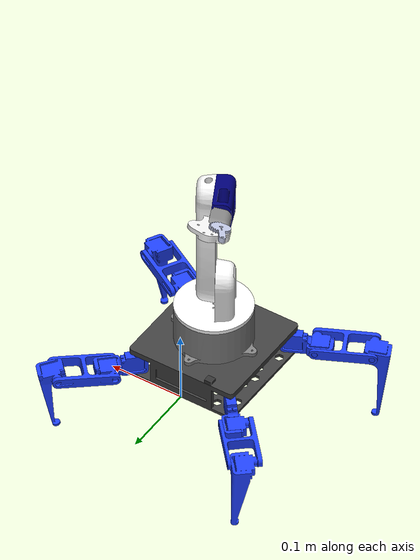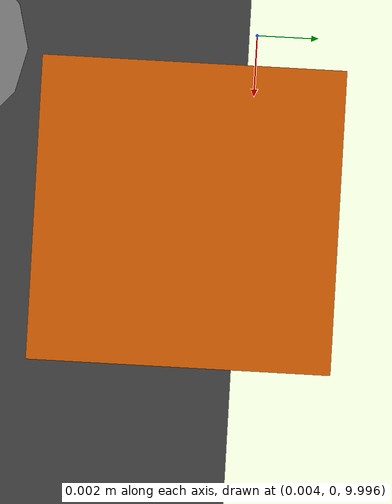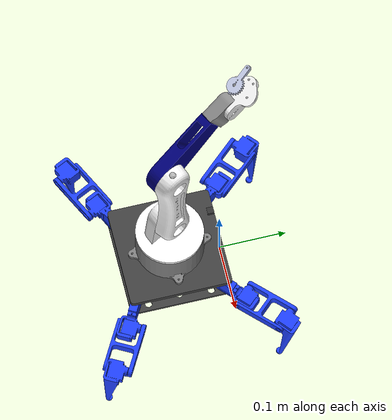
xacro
<?xml version="1.0" encoding="utf-8"?>

<robot xmlns:xacro="http://www.ros.org/wiki/xacro" name="rob_description">

  <xacro:include filename="$(find rob_description)/urdf/rob_plugins.gazebo"/>

  <link name="base_link">
    <visual>
      <origin xyz="0 0 0" rpy="0 0 0" />
      <geometry>
        <mesh filename="package://rob_description/meshes/base_link.STL" />
      </geometry>
      <material name="">
        <color rgba="0.250980392156863 0.250980392156863 0.250980392156863 1" />
      </material>
    </visual>
    <collision>
      <origin xyz="0 0 0" rpy="0 0 0" />
      <geometry>
        <mesh filename="package://rob_description/meshes/base_link.STL" />
      </geometry>
    </collision>
  </link>

  <link name="leg_1_1_link">
    <inertial>
      <origin xyz="-0.0106490352621465 -0.00788349186649798 -0.0217316457944361" rpy="0 0 0" />
      <mass value="0.0143673057318463" />
      <inertia ixx="2.00046296981926E-06" ixy="-1.44785102804453E-06" ixz="1.0199547543337E-07" iyy="2.90267728958665E-06" iyz="5.70211060457614E-08" izz="3.69909430740157E-06" />
    </inertial>
    <visual>
      <origin xyz="0 0 0" rpy="0 0 0" />
      <geometry>
        <mesh filename="package://rob_description/meshes/leg_1_1_link.STL" />
      </geometry>
      <material name="">
        <color rgba="0.12156862745098 0.254901960784314 1 1" />
      </material>
    </visual>
    <collision>
      <origin xyz="0 0 0" rpy="0 0 0" />
      <geometry>
        <mesh filename="package://rob_description/meshes/leg_1_1_link.STL" />
      </geometry>
    </collision>
  </link>
  <joint name="leg_1_1_joint" type="revolute">
    <origin xyz="0.067436 -0.007588 0.03925" rpy="0 0 3.1416" />
    <parent link="base_link" />
    <child link="leg_1_1_link" />
    <axis xyz="0 0 1" />
    <limit lower="-1.3" upper="1.3" effort="1" velocity="0.524" />
  </joint>
  <link name="leg_1_2_link">
    <inertial>
      <origin xyz="-0.0240030080062505 0.00154691156426078 -0.0168300270535889" rpy="0 0 0" />
      <mass value="0.0194186744544705" />
      <inertia ixx="4.37362559849436E-06" ixy="3.15015061261735E-07" ixz="-3.65341749437026E-08" iyy="9.16498617164118E-06" iyz="2.3249787544917E-22" izz="5.43377889107762E-06" />
    </inertial>
    <visual>
      <origin xyz="0 0 0" rpy="0 0 0" />
      <geometry>
        <mesh filename="package://rob_description/meshes/leg_1_2_link.STL" />
      </geometry>
      <material name="">
        <color rgba="0.12156862745098 0.254901960784314 1 1" />
      </material>
    </visual>
    <collision>
      <origin xyz="0 0 0" rpy="0 0 0" />
      <geometry>
        <mesh filename="package://rob_description/meshes/leg_1_2_link.STL" />
      </geometry>
    </collision>
  </link>
  <joint name="leg_1_2_joint" type="revolute">
    <origin xyz="-0.0094487 -0.037471 -0.02475" rpy="1.5708 0 0.75" />
    <parent link="leg_1_1_link" />
    <child link="leg_1_2_link" />
    <axis xyz="0 0 1" />
    <limit lower="-1.57" upper="1.57" effort="1" velocity="0.524" />
  </joint>
  <link name="leg_1_3_link">
    <inertial>
      <origin xyz="-0.0116199972401624 -0.0159593362453021 -0.023840410791102" rpy="0 0 0" />
      <mass value="0.0241947516819825" />
      <inertia ixx="1.00525150794293E-05" ixy="-2.63446904038669E-06" ixz="-1.44799444513624E-07" iyy="3.22719003519367E-06" iyz="-4.80347692515564E-07" izz="1.14324733611022E-05" />
    </inertial>
    <visual>
      <origin xyz="0 0 0" rpy="0 0 0" />
      <geometry>
        <mesh filename="package://rob_description/meshes/leg_1_3_link.STL" />
      </geometry>
      <material name="">
        <color rgba="0.12156862745098 0.254901960784314 1 1" />
      </material>
    </visual>
    <collision>
      <origin xyz="0 0 0" rpy="0 0 0" />
      <geometry>
        <mesh filename="package://rob_description/meshes/leg_1_3_link.STL" />
      </geometry>
    </collision>
  </link>
  <joint name="leg_1_3_joint" type="revolute">
    <origin xyz="-0.070632 0.0048883 0" rpy="0 0 0.3" />
    <parent link="leg_1_2_link" />
    <child link="leg_1_3_link" />
    <axis xyz="0 0 1" />
    <limit lower="-3.09" upper="0.5" effort="1" velocity="0.524" />
  </joint>
  <link name="leg_2_1_link">
    <inertial>
      <origin xyz="0.00765382023590318 -0.0110595344702691 -0.0217316457944361" rpy="0 0 0" />
      <mass value="0.0143673057318463" />
      <inertia ixx="2.99910580377544E-06" ixy="1.4142047075038E-06" ixz="-5.35542822138962E-08" iyy="1.90403445563047E-06" iyz="1.03857702651828E-07" izz="3.69909430740157E-06" />
    </inertial>
    <visual>
      <origin xyz="0 0 0" rpy="0 0 0" />
      <geometry>
        <mesh filename="package://rob_description/meshes/leg_2_1_link.STL" />
      </geometry>
      <material name="">
        <color rgba="0.12156862745098 0.254901960784314 1 1" />
      </material>
    </visual>
    <collision>
      <origin xyz="0 0 0" rpy="0 0 0" />
      <geometry>
        <mesh filename="package://rob_description/meshes/leg_2_1_link.STL" />
      </geometry>
    </collision>
  </link>
  <joint name="leg_2_1_joint" type="revolute">
    <origin xyz="-0.067132 -0.0078501 0.03925" rpy="0 0 3.1416" />
    <parent link="base_link" />
    <child link="leg_2_1_link" />
    <axis xyz="0 0 1" />
    <limit lower="-1.3" upper="1.3" effort="1" velocity="0.524" />
  </joint>
  <link name="leg_2_2_link">
    <inertial>
      <origin xyz="-0.0240407161564033 0.000837306848763444 -0.0168300270535892" rpy="0 0 0" />
      <mass value="0.0194186744544706" />
      <inertia ixx="4.35825480780332E-06" ixy="1.70797093131495E-07" ixz="-3.65341749437066E-08" iyy="9.18035696233226E-06" iyz="7.6771153781775E-22" izz="5.43377889107763E-06" />
    </inertial>
    <visual>
      <origin xyz="0 0 0" rpy="0 0 0" />
      <geometry>
        <mesh filename="package://rob_description/meshes/leg_2_2_link.STL" />
      </geometry>
      <material name="">
        <color rgba="0.12156862745098 0.254901960784314 1 1" />
      </material>
    </visual>
    <collision>
      <origin xyz="0 0 0" rpy="0 0 0" />
      <geometry>
        <mesh filename="package://rob_description/meshes/leg_2_2_link.STL" />
      </geometry>
    </collision>
  </link>
  <joint name="leg_2_2_joint" type="revolute">
    <origin xyz="0.037396 -0.011005 -0.02475" rpy="1.5708 0 2.2941" />
    <parent link="leg_2_1_link" />
    <child link="leg_2_2_link" />
    <axis xyz="0 0 1" />
    <limit lower="-3.14" upper="0" effort="1" velocity="0.524" />
  </joint>
  <link name="leg_2_3_link">
    <inertial>
      <origin xyz="-0.0120694937507684 -0.015533695318398 -0.0238404132064595" rpy="0 0 0" />
      <mass value="0.0241947564491642" />
      <inertia ixx="9.84592383759881E-06" ixy="-2.88232802391957E-06" ixz="-1.62673942353806E-07" iyy="3.43378314409524E-06" iyz="-4.74594077197786E-07" izz="1.14324745456412E-05" />
    </inertial>
    <visual>
      <origin xyz="0 0 0" rpy="0 0 0" />
      <geometry>
        <mesh filename="package://rob_description/meshes/leg_2_3_link.STL" />
      </geometry>
      <material name="">
        <color rgba="0.12156862745098 0.254901960784314 1 1" />
      </material>
    </visual>
    <collision>
      <origin xyz="0 0 0" rpy="0 0 0" />
      <geometry>
        <mesh filename="package://rob_description/meshes/leg_2_3_link.STL" />
      </geometry>
    </collision>
  </link>
  <joint name="leg_2_3_joint" type="revolute">
    <origin xyz="-0.070949 0.0026748 0" rpy="0 0 0.3" />
    <parent link="leg_2_2_link" />
    <child link="leg_2_3_link" />
    <axis xyz="0 0 1" />
    <limit lower="-1.57" upper="1.57" effort="1" velocity="0.524" />
  </joint>
  <link name="leg_3_1_link">
    <inertial>
      <origin xyz="0.0126970354971494 0.00443616461447369 -0.0217316457944361" rpy="0 0 0" />
      <mass value="0.0143673057318463" />
      <inertia ixx="1.25625446259264E-06" ixy="-9.3326883858219E-07" ixz="-1.14361605927127E-07" iyy="3.64688579681327E-06" iyz="-2.39980547822068E-08" izz="3.69909430740157E-06" />
    </inertial>
    <visual>
      <origin xyz="0 0 0" rpy="0 0 0" />
      <geometry>
        <mesh filename="package://rob_description/meshes/leg_3_1_link.STL" />
      </geometry>
      <material name="">
        <color rgba="0.12156862745098 0.254901960784314 1 1" />
      </material>
    </visual>
    <collision>
      <origin xyz="0 0 0" rpy="0 0 0" />
      <geometry>
        <mesh filename="package://rob_description/meshes/leg_3_1_link.STL" />
      </geometry>
    </collision>
  </link>
  <joint name="leg_3_1_joint" type="revolute">
    <origin xyz="-0.06718 -0.14209 0.03925" rpy="0 0 3.1416" />
    <parent link="base_link" />
    <child link="leg_3_1_link" />
    <axis xyz="0 0 1" />
    <limit lower="-1.3" upper="1.3" effort="1" velocity="0.524" />
  </joint>
  <link name="leg_3_2_link">
    <inertial>
      <origin xyz="-0.02405625766153 -5.43509583599191E-05 -0.0168300270513747" rpy="0 0 0" />
      <mass value="0.0194186744544706" />
      <inertia ixx="4.35191218053022E-06" ixy="-1.10943931526685E-08" ixz="-3.65341749017511E-08" iyy="9.18669958960249E-06" iyz="4.29736871833547E-19" izz="5.43377889108045E-06" />
    </inertial>
    <visual>
      <origin xyz="0 0 0" rpy="0 0 0" />
      <geometry>
        <mesh filename="package://rob_description/meshes/leg_3_2_link.STL" />
      </geometry>
      <material name="">
        <color rgba="0.12156862745098 0.254901960784314 1 1" />
      </material>
    </visual>
    <collision>
      <origin xyz="0 0 0" rpy="0 0 0" />
      <geometry>
        <mesh filename="package://rob_description/meshes/leg_3_2_link.STL" />
      </geometry>
    </collision>
  </link>
  <joint name="leg_3_2_joint" type="revolute">
    <origin xyz="0.020556 0.033121 -0.02475" rpy="1.5708 0 -2.6876" />
    <parent link="leg_3_1_link" />
    <child link="leg_3_2_link" />
    <axis xyz="0 0 1" />
    <limit lower="-1.57" upper="1.57" effort="1" velocity="0.524" />
  </joint>
  <link name="leg_3_3_link">
    <inertial>
      <origin xyz="-0.0124936356093147 -0.0151946394857798 -0.0238404136825089" rpy="0 0 0" />
      <mass value="0.0241947491201489" />
      <inertia ixx="9.68198159825631E-06" ixy="-3.05484752975316E-06" ixz="-1.7571148648404E-07" iyy="3.59771587259095E-06" iyz="-4.69924040082928E-07" izz="1.14324644656944E-05" />
    </inertial>
    <visual>
      <origin xyz="0 0 0" rpy="0 0 0" />
      <geometry>
        <mesh filename="package://rob_description/meshes/leg_3_3_link.STL" />
      </geometry>
      <material name="">
        <color rgba="0.12156862745098 0.254901960784314 1 1" />
      </material>
    </visual>
    <collision>
      <origin xyz="0 0 0" rpy="0 0 0" />
      <geometry>
        <mesh filename="package://rob_description/meshes/leg_3_3_link.STL" />
      </geometry>
    </collision>
  </link>
  <joint name="leg_3_3_joint" type="revolute">
    <origin xyz="-0.070997 -0.00013741 0" rpy="0 0 0.3" />
    <parent link="leg_3_2_link" />
    <child link="leg_3_3_link" />
    <axis xyz="0 0 1" />
    <limit lower="-3.09" upper="0.5" effort="1" velocity="0.524" />
  </joint>
  <link name="leg_4_1_link">
    <inertial>
      <origin xyz="-0.0108987888292679 0.00788103222665758 -0.0217316457944361" rpy="0 0 0" />
      <mass value="0.0143673057318463" />
      <inertia ixx="1.98994613803271E-06" ixy="1.44453229781212E-06" ixz="8.50719290596024E-08" iyy="2.9131941213732E-06" iyz="-8.01077426322773E-08" izz="3.69909430740156E-06" />
    </inertial>
    <visual>
      <origin xyz="0 0 0" rpy="0 0 0" />
      <geometry>
        <mesh filename="package://rob_description/meshes/leg_4_1_link.STL" />
      </geometry>
      <material name="">
        <color rgba="0.12156862745098 0.254901960784314 1 1" />
      </material>
    </visual>
    <collision>
      <origin xyz="0 0 0" rpy="0 0 0" />
      <geometry>
        <mesh filename="package://rob_description/meshes/leg_4_1_link.STL" />
      </geometry>
    </collision>
  </link>
  <joint name="leg_4_1_joint" type="revolute">
    <origin xyz="0.06742 -0.14215 0.03925" rpy="0 0 3.1416" />
    <parent link="base_link" />
    <child link="leg_4_1_link" />
    <axis xyz="0 0 1" />
    <limit lower="-1.3" upper="1.3" effort="1" velocity="0.524" />
  </joint>
  <link name="leg_4_2_link">
    <inertial>
      <origin xyz="-0.024051068680761 0.000485899382056869 -0.0168300270535894" rpy="0 0 0" />
      <mass value="0.0194186744544706" />
      <inertia ixx="4.35403033809247E-06" ixy="9.91613384555115E-08" ixz="-3.65341749436961E-08" iyy="9.1845814320431E-06" iyz="-3.77195160131607E-22" izz="5.43377889107763E-06" />
    </inertial>
    <visual>
      <origin xyz="0 0 0" rpy="0 0 0" />
      <geometry>
        <mesh filename="package://rob_description/meshes/leg_4_2_link.STL" />
      </geometry>
      <material name="">
        <color rgba="0.12156862745098 0.254901960784314 1 1" />
      </material>
    </visual>
    <collision>
      <origin xyz="0 0 0" rpy="0 0 0" />
      <geometry>
        <mesh filename="package://rob_description/meshes/leg_4_2_link.STL" />
      </geometry>
    </collision>
  </link>
  <joint name="leg_4_2_joint" type="revolute">
    <origin xyz="-0.038927 -0.0020709 -0.02475" rpy="1.5708 0 -0.50817" />
    <parent link="leg_4_1_link" />
    <child link="leg_4_2_link" />
    <axis xyz="0 0 1" />
    <limit lower="-1.57" upper="1.57" effort="1" velocity="0.524" />
  </joint>
  <link name="leg_4_3_link">
    <inertial>
      <origin xyz="-0.0128468350172348 -0.0148972191681003 -0.0238404102670697" rpy="0 0 0" />
      <mass value="0.024194755406874" />
      <inertia ixx="9.53527419664644E-06" ixy="-3.1942507137305E-06" ixz="-1.86691989740315E-07" iyy="3.74443269642469E-06" iyz="-4.65668107771331E-07" izz="1.14324750578155E-05" />
    </inertial>
    <visual>
      <origin xyz="0 0 0" rpy="0 0 0" />
      <geometry>
        <mesh filename="package://rob_description/meshes/leg_4_3_link.STL" />
      </geometry>
      <material name="">
        <color rgba="0.12156862745098 0.254901960784314 1 1" />
      </material>
    </visual>
    <collision>
      <origin xyz="0 0 0" rpy="0 0 0" />
      <geometry>
        <mesh filename="package://rob_description/meshes/leg_4_3_link.STL" />
      </geometry>
    </collision>
  </link>
  <joint name="leg_4_3_joint" type="revolute">
    <origin xyz="-0.07098 0.0015744 0" rpy="0 0 0.3" />
    <parent link="leg_4_2_link" />
    <child link="leg_4_3_link" />
    <axis xyz="0 0 1" />
    <limit lower="-3.09" upper="0.5" effort="1" velocity="0.524" />
  </joint>
  <link name="robot_arm_base_link">
    <inertial>
      <origin xyz="-0.00060550087230387 -0.0746232517815496 0.0658482076492735" rpy="0 0 0" />
      <mass value="0.0938941939628841" />
      <inertia ixx="0.00011393791922916" ixy="1.97717536504341E-13" ixz="1.35515920698357E-06" iyy="0.000124247629168402" iyz="-1.90758299063095E-13" izz="0.000197548704096291" />
    </inertial>
    <visual>
      <origin xyz="0 0 0" rpy="0 0 0" />
      <geometry>
        <mesh filename="package://rob_description/meshes/robot_arm_base_link.STL" />
      </geometry>
      <material name="">
        <color rgba="0.501960784313725 0.501960784313725 0.501960784313725 1" />
      </material>
    </visual>
    <collision>
      <origin xyz="0 0 0" rpy="0 0 0" />
      <geometry>
        <mesh filename="package://rob_description/meshes/robot_arm_base_link.STL" />
      </geometry>
    </collision>
  </link>
  <joint name="robot_arm_base_joint" type="fixed">
    <origin xyz="0 0 0" rpy="0 0 0" />
    <parent link="base_link" />
    <child link="robot_arm_base_link" />
    <axis xyz="0 0 0" />
  </joint>
  <link name="waist_link">
    <inertial>
      <origin xyz="0.00611859874217046 0.00351738738985236 0.0144229347811668" rpy="0 0 0" />
      <mass value="0.0897213187915253" />
      <inertia ixx="7.47059613692468E-05" ixy="4.46564576455446E-06" ixz="-6.90784940398821E-06" iyy="6.9504003440658E-05" iyz="-3.97104407861625E-06" izz="7.06954475493945E-05" />
    </inertial>
    <visual>
      <origin xyz="0 0 0" rpy="0 0 0" />
      <geometry>
        <mesh filename="package://rob_description/meshes/waist_link.STL" />
      </geometry>
      <material name="">
        <color rgba="1 1 1 1" />
      </material>
    </visual>
    <collision>
      <origin xyz="0 0 0" rpy="0 0 0" />
      <geometry>
        <mesh filename="package://rob_description/meshes/waist_link.STL" />
      </geometry>
    </collision>
  </link>
  <joint name="waist_joint" type="revolute">
    <origin xyz="0.00028473 -0.074623 0.09845" rpy="0 0 3.1416" />
    <parent link="robot_arm_base_link" />
    <child link="waist_link" />
    <axis xyz="0 0 1" />
    <limit lower="-0.6" upper="2.7302" effort="1" velocity="0.524" />
  </joint>
  <link name="shoulder_link">
    <inertial>
      <origin xyz="-0.0310609091112614 0.0627288829136049 -0.0103077586659709" rpy="0 0 0" />
      <mass value="0.13797058412603" />
      <inertia ixx="0.000337671851308865" ixy="0.000151928622465238" ixz="-5.14980053501098E-12" iyy="0.000106061064850195" iyz="-2.38384183718482E-09" izz="0.000431654996422589" />
    </inertial>
    <visual>
      <origin xyz="0 0 0" rpy="0 0 0" />
      <geometry>
        <mesh filename="package://rob_description/meshes/shoulder_link.STL" />
      </geometry>
      <material name="">
        <color rgba="1 1 1 1" />
      </material>
    </visual>
    <collision>
      <origin xyz="0 0 0" rpy="0 0 0" />
      <geometry>
        <mesh filename="package://rob_description/meshes/shoulder_link.STL" />
      </geometry>
    </collision>
  </link>
  <joint name="shoulder_joint" type="revolute">
    <origin xyz="0.0021674 0.0012459 0.03855" rpy="1.5708 0.4574 2.0925" />
    <parent link="waist_link" />
    <child link="shoulder_link" />
    <axis xyz="0 0 1" />
    <limit lower="-2.04" upper="1.1" effort="1" velocity="0.524" />
  </joint>
  <link name="elbow_link">
    <inertial>
      <origin xyz="-0.0317110681393049 0.000512819590960834 0.0105819481349713" rpy="0 0 0" />
      <mass value="0.0805412728707214" />
      <inertia ixx="2.13906677114355E-05" ixy="1.45993082529441E-06" ixz="8.18249461605616E-07" iyy="0.000104511975012836" iyz="-1.64217381590211E-08" izz="0.000117350303128806" />
    </inertial>
    <visual>
      <origin xyz="0 0 0" rpy="0 0 0" />
      <geometry>
        <mesh filename="package://rob_description/meshes/elbow_link.STL" />
      </geometry>
      <material name="">
        <color rgba="0 0 0.501960784313725 1" />
      </material>
    </visual>
    <collision>
      <origin xyz="0 0 0" rpy="0 0 0" />
      <geometry>
        <mesh filename="package://rob_description/meshes/elbow_link.STL" />
      </geometry>
    </collision>
  </link>
  <joint name="elbow_joint" type="revolute">
    <origin xyz="-0.062122 0.12546 0" rpy="0 0 0" />
    <parent link="shoulder_link" />
    <child link="elbow_link" />
    <axis xyz="0 0 1" />
    <limit lower="-1.8" upper="1.34" effort="1" velocity="0.524" />
  </joint>
  <link name="wrist_link">
    <inertial>
      <origin xyz="-0.00471777788275105 0.00155489407652704 0.0121966940287668" rpy="0 0 0" />
      <mass value="0.0204563646354008" />
      <inertia ixx="6.04214500606226E-06" ixy="-1.775155318629E-07" ixz="3.80836197673735E-07" iyy="5.12770780036699E-06" iyz="-8.37854840705123E-08" izz="2.96023192277235E-06" />
    </inertial>
    <visual>
      <origin xyz="0 0 0" rpy="0 0 0" />
      <geometry>
        <mesh filename="package://rob_description/meshes/wrist_link.STL" />
      </geometry>
      <material name="">
        <color rgba="0.556862745098039 0.556862745098039 0.556862745098039 1" />
      </material>
    </visual>
    <collision>
      <origin xyz="0 0 0" rpy="0 0 0" />
      <geometry>
        <mesh filename="package://rob_description/meshes/wrist_link.STL" />
      </geometry>
    </collision>
  </link>
  <joint name="wrist_joint" type="revolute">
    <origin xyz="-0.11081 -0.003455 0.01185" rpy="3.1234 -1.5708 -3.1342" />
    <parent link="elbow_link" />
    <child link="wrist_link" />
    <axis xyz="0 0 1" />
    <limit lower="0" upper="3.14" effort="1" velocity="0.524" />
  </joint>
  <link name="wrist_pitch_link">
    <inertial>
      <origin xyz="0.0234962838007828 -0.00839115023257386 -0.00860452842373835" rpy="0 0 0" />
      <mass value="0.0155761385595563" />
      <inertia ixx="2.81087134144932E-06" ixy="1.21214546283074E-06" ixz="4.74575353731491E-07" iyy="6.02127331140936E-06" iyz="-2.70433488341758E-07" izz="4.87873697904178E-06" />
    </inertial>
    <visual>
      <origin xyz="0 0 0" rpy="0 0 0" />
      <geometry>
        <mesh filename="package://rob_description/meshes/wrist_pitch_link.STL" />
      </geometry>
      <material name="">
        <color rgba="1 1 1 1" />
      </material>
    </visual>
    <collision>
      <origin xyz="0 0 0" rpy="0 0 0" />
      <geometry>
        <mesh filename="package://rob_description/meshes/wrist_pitch_link.STL" />
      </geometry>
    </collision>
  </link>
  <joint name="wrist_pitch_joint" type="revolute">
    <origin xyz="-0.022134 0.0049255 0.02215" rpy="1.5708 -2 -1.76" />
    <parent link="wrist_link" />
    <child link="wrist_pitch_link" />
    <axis xyz="0 0 1" />
    <limit lower="-1.14" upper="2" effort="1" velocity="0.524" />
  </joint>
  <link name="gripper_link">
    <inertial>
      <origin xyz="-0.00632044577393159 -0.00360312105778196 -0.00225628206764211" rpy="0 0 0" />
      <mass value="0.0028244899707033" />
      <inertia ixx="2.18828793010801E-07" ixy="-1.74230137961414E-07" ixz="-1.06355092899113E-08" iyy="3.33606103113108E-07" iyz="-7.65787702379376E-09" izz="5.41413331326968E-07" />
    </inertial>
    <visual>
      <origin xyz="0 0 0" rpy="0 0 0" />
      <geometry>
        <mesh filename="package://rob_description/meshes/gripper_link.STL" />
      </geometry>
      <material name="">
        <color rgba="0.792156862745098 0.819607843137255 0.933333333333333 1" />
      </material>
    </visual>
    <collision>
      <origin xyz="0 0 0" rpy="0 0 0" />
      <geometry>
        <mesh filename="package://rob_description/meshes/gripper_link.STL" />
      </geometry>
    </collision>
  </link>
  <joint name="gripper_joint" type="revolute">
    <origin xyz="0.034204 -0.0015613 -0.02295" rpy="1.5708 1.2123 2.6053" />
    <parent link="wrist_pitch_link" />
    <child link="gripper_link" />
    <axis xyz="0 0 -1" />
    <limit lower="-1.1" upper="-0.4" effort="1" velocity="0.524" />
  </joint>

  <link name="camera_link">
    <visual>
      <origin xyz="-0.02 -0.002 0.023" rpy="0 0 0" />
      <geometry>
        <box size="0.01 0.01 0.005" />
      </geometry>
      <material name="">
        <color rgba="0.2 0.2 0.2 1" />
      </material>
    </visual>
    <collision>
      <origin xyz="-0.02 -0.002 0.023" rpy="0 0 0" />
      <geometry>
        <box size="0.01 0.01 0.005" />
      </geometry>
    </collision>
  </link>

  <joint name="camera_joint" type="fixed">
    <parent link="base_link" />
    <child link="camera_link" />
    <origin xyz="-0.02 -0.002 0.023" rpy="0 0 0" />
  </joint>

  <link name="sonar_link">
    <collision>
      <geometry>
        <box size="0.01 0.01 0.006"/>
      </geometry>
    </collision>
    <visual>
      <geometry>
         <box size="0.01 0.01 0.006"/>
      </geometry>
      <material name="">
        <ambient>0.0 0.0 1.0 1.0</ambient>        <!-- Blue Color -->
      </material>
    </visual>
  </link>

  <joint name="ultrasonic_sensor_joint" type="fixed">
    <parent link="base_link"/>
    <child link="sonar_link"/>
    <origin xyz="0.01 -0.002 10" rpy="0 0 0"/>
  </joint>

  <transmission name="waist_link">
    <type>transmission_interface/SimpleTransmission</type>
    <joint name="waist_joint">
      <hardwareInterface>hardware_interface/PositionJointInterface</hardwareInterface>
    </joint>
    <actuator name="waist_link">
      <hardwareInterface>hardware_interface/PositionJointInterface</hardwareInterface>
      <mechanicalReduction>1</mechanicalReduction>
    </actuator>
  </transmission>

  <transmission name="shoulder_link">
    <type>transmission_interface/SimpleTransmission</type>
    <joint name="shoulder_joint">
      <hardwareInterface>hardware_interface/PositionJointInterface</hardwareInterface>
    </joint>
    <actuator name="shoulder_link">
      <hardwareInterface>hardware_interface/PositionJointInterface</hardwareInterface>
      <mechanicalReduction>1</mechanicalReduction>
    </actuator>
  </transmission>

  <transmission name="elbow_link">
    <type>transmission_interface/SimpleTransmission</type>
    <joint name="elbow_joint">
      <hardwareInterface>hardware_interface/PositionJointInterface</hardwareInterface>
    </joint>
    <actuator name="elbow_link">
      <hardwareInterface>hardware_interface/PositionJointInterface</hardwareInterface>
      <mechanicalReduction>1</mechanicalReduction>
    </actuator>
  </transmission>

  <transmission name="wrist_link">
    <type>transmission_interface/SimpleTransmission</type>
    <joint name="wrist_joint">
      <hardwareInterface>hardware_interface/PositionJointInterface</hardwareInterface>
    </joint>
    <actuator name="wrist_link">
      <hardwareInterface>hardware_interface/PositionJointInterface</hardwareInterface>
      <mechanicalReduction>1</mechanicalReduction>
    </actuator>
  </transmission>

  <transmission name="wrist_pitch_link">
    <type>transmission_interface/SimpleTransmission</type>
    <joint name="wrist_pitch_joint">
      <hardwareInterface>hardware_interface/PositionJointInterface</hardwareInterface>
    </joint>
    <actuator name="wrist_pitch_link">
      <hardwareInterface>hardware_interface/PositionJointInterface</hardwareInterface>
      <mechanicalReduction>1</mechanicalReduction>
    </actuator>
  </transmission>

  <transmission name="gripper_link">
    <type>transmission_interface/SimpleTransmission</type>
    <joint name="gripper_joint">
      <hardwareInterface>hardware_interface/PositionJointInterface</hardwareInterface>
    </joint>
    <actuator name="gripper link">
      <hardwareInterface>hardware_interface/PositionJointInterface</hardwareInterface>
      <mechanicalReduction>1</mechanicalReduction>
    </actuator>
  </transmission>

  <transmission name="leg_1_1_link">
    <type>transmission_interface/SimpleTransmission</type>
    <joint name="leg_1_1_joint">
      <hardwareInterface>hardware_interface/PositionJointInterface</hardwareInterface>
    </joint>
    <actuator name="leg_1_1_link">
      <hardwareInterface>hardware_interface/PositionJointInterface</hardwareInterface>
      <mechanicalReduction>1</mechanicalReduction>
    </actuator>
  </transmission>
  <transmission name="leg_1_2_link">
    <type>transmission_interface/SimpleTransmission</type>
    <joint name="leg_1_2_joint">
      <hardwareInterface>hardware_interface/PositionJointInterface</hardwareInterface>
    </joint>
    <actuator name="leg_1_2_link">
      <hardwareInterface>hardware_interface/PositionJointInterface</hardwareInterface>
      <mechanicalReduction>1</mechanicalReduction>
    </actuator>
  </transmission>
  <transmission name="leg_1_3_link">
    <type>transmission_interface/SimpleTransmission</type>
    <joint name="leg_1_3_joint">
      <hardwareInterface>hardware_interface/PositionJointInterface</hardwareInterface>
    </joint>
    <actuator name="leg_1_3_link">
      <hardwareInterface>hardware_interface/PositionJointInterface</hardwareInterface>
      <mechanicalReduction>1</mechanicalReduction>
    </actuator>
  </transmission>
  <transmission name="leg_2_1_link">
    <type>transmission_interface/SimpleTransmission</type>
    <joint name="leg_2_1_joint">
      <hardwareInterface>hardware_interface/PositionJointInterface</hardwareInterface>
    </joint>
    <actuator name="leg_2_1_link">
      <hardwareInterface>hardware_interface/PositionJointInterface</hardwareInterface>
      <mechanicalReduction>1</mechanicalReduction>
    </actuator>
  </transmission>
  <transmission name="leg_2_2_link">
    <type>transmission_interface/SimpleTransmission</type>
    <joint name="leg_2_2_joint">
      <hardwareInterface>hardware_interface/PositionJointInterface</hardwareInterface>
    </joint>
    <actuator name="leg_2_2_link">
      <hardwareInterface>hardware_interface/PositionJointInterface</hardwareInterface>
      <mechanicalReduction>1</mechanicalReduction>
    </actuator>
  </transmission>
  <transmission name="leg_2_3_link">
    <type>transmission_interface/SimpleTransmission</type>
    <joint name="leg_2_3_joint">
      <hardwareInterface>hardware_interface/PositionJointInterface</hardwareInterface>
    </joint>
    <actuator name="leg_2_3_link">
      <hardwareInterface>hardware_interface/PositionJointInterface</hardwareInterface>
      <mechanicalReduction>1</mechanicalReduction>
    </actuator>
  </transmission>
  <transmission name="leg_3_1_link">
    <type>transmission_interface/SimpleTransmission</type>
    <joint name="leg_3_1_joint">
      <hardwareInterface>hardware_interface/PositionJointInterface</hardwareInterface>
    </joint>
    <actuator name="leg_3_1_link">
      <hardwareInterface>hardware_interface/PositionJointInterface</hardwareInterface>
      <mechanicalReduction>1</mechanicalReduction>
    </actuator>
  </transmission>
  <transmission name="leg_3_2_link">
    <type>transmission_interface/SimpleTransmission</type>
    <joint name="leg_3_2_joint">
      <hardwareInterface>hardware_interface/PositionJointInterface</hardwareInterface>
    </joint>
    <actuator name="leg_3_2_link">
      <hardwareInterface>hardware_interface/PositionJointInterface</hardwareInterface>
      <mechanicalReduction>1</mechanicalReduction>
    </actuator>
  </transmission>
  <transmission name="leg_3_3_link">
    <type>transmission_interface/SimpleTransmission</type>
    <joint name="leg_3_3_joint">
      <hardwareInterface>hardware_interface/PositionJointInterface</hardwareInterface>
    </joint>
    <actuator name="leg_3_3_link">
      <hardwareInterface>hardware_interface/PositionJointInterface</hardwareInterface>
      <mechanicalReduction>1</mechanicalReduction>
    </actuator>
  </transmission>
  <transmission name="leg_4_1_link">
    <type>transmission_interface/SimpleTransmission</type>
    <joint name="leg_4_1_joint">
      <hardwareInterface>hardware_interface/PositionJointInterface</hardwareInterface>
    </joint>
    <actuator name="leg_4_1_link">
      <hardwareInterface>hardware_interface/PositionJointInterface</hardwareInterface>
      <mechanicalReduction>1</mechanicalReduction>
    </actuator>
  </transmission>
  <transmission name="leg_4_2_link">
    <type>transmission_interface/SimpleTransmission</type>
    <joint name="leg_4_2_joint">
      <hardwareInterface>hardware_interface/PositionJointInterface</hardwareInterface>
    </joint>
    <actuator name="leg_4_2_link">
      <hardwareInterface>hardware_interface/PositionJointInterface</hardwareInterface>
      <mechanicalReduction>1</mechanicalReduction>
    </actuator>
  </transmission>
  <transmission name="leg_4_3_link">
    <type>transmission_interface/SimpleTransmission</type>
    <joint name="leg_4_3_joint">
      <hardwareInterface>hardware_interface/PositionJointInterface</hardwareInterface>
    </joint>
    <actuator name="leg_4_3_link">
      <hardwareInterface>hardware_interface/PositionJointInterface</hardwareInterface>
      <mechanicalReduction>1</mechanicalReduction>
    </actuator>
  </transmission>

</robot>
